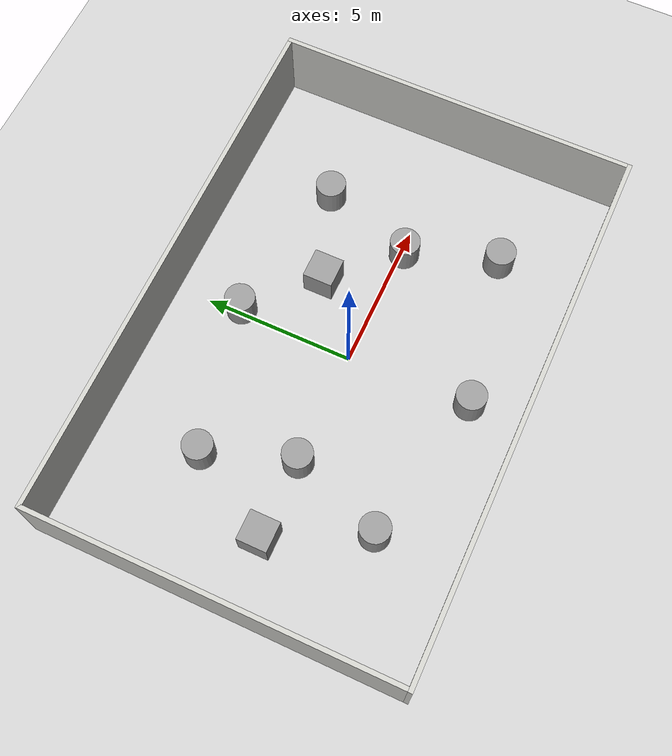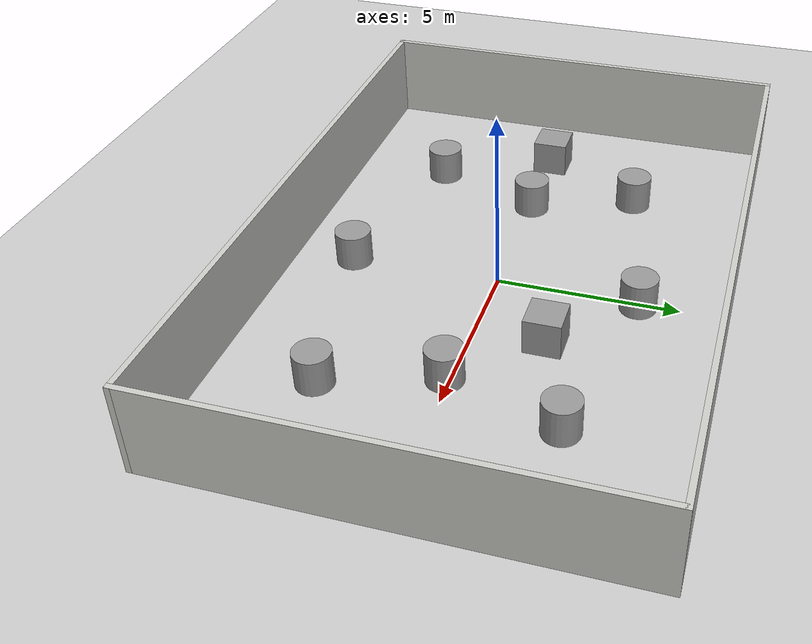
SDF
<sdf version="1.7">
 <world name="default">
  <light name="sun" type="directional">
   <pose>0 0 10 0 -0 0</pose>
   <diffuse>0.8 0.8 0.8 1</diffuse>
   <specular>0.2 0.2 0.2 1</specular>
   <attenuation>
    <range>1000</range>
    <constant>0.9</constant>
    <linear>0.01</linear>
    <quadratic>0.001</quadratic>
   </attenuation>
   <direction>-0.5 0.1 -0.9</direction>
   <spot><inner_angle>0</inner_angle><outer_angle>0</outer_angle><falloff>0</falloff></spot>
  </light>
  <model name="ground_plane">
   <static>1</static>
   <link name="link">
    <collision name="collision">
     <geometry><plane><normal>0 0 1</normal><size>100 100</size></plane></geometry>
     <surface><friction><ode><mu>100</mu><mu2>50</mu2></ode></friction></surface>
    </collision>
    <visual name="visual">
     <cast_shadows>0</cast_shadows>
     <geometry><plane><normal>0 0 1</normal><size>100 100</size></plane></geometry>
     <material>
      <script><uri>file://media/materials/scripts/gazebo.material</uri><name>Gazebo/Grey</name></script>
     </material>
    </visual>
   </link>
  </model>
  <gravity>0 0 -9.8</gravity>
  <magnetic_field>6e-06 2.3e-05 -4.2e-05</magnetic_field>
  <atmosphere type="adiabatic"/>
  <physics type="ode">
   <max_step_size>0.001</max_step_size>
   <real_time_factor>1</real_time_factor>
   <real_time_update_rate>1000</real_time_update_rate>
  </physics>
  <scene><ambient>0.4 0.4 0.4 1</ambient><background>0.7 0.7 0.7 1</background><shadows>1</shadows></scene>
  <spherical_coordinates>
   <surface_model>EARTH_WGS84</surface_model>
   <latitude_deg>0</latitude_deg>
   <longitude_deg>0</longitude_deg>
   <elevation>0</elevation>
   <heading_deg>0</heading_deg>
  </spherical_coordinates>
  <model name="my_world">
   <pose>-0.001285 0.176708 0 0 -0 0</pose>
   <link name="Wall_22">
    <collision name="Wall_22_Collision">
     <geometry><box><size>18 0.15 2.5</size></box></geometry>
     <pose>0 0 1.25 0 -0 0</pose>
    </collision>
    <visual name="Wall_22_Visual">
     <pose>0 0 1.25 0 -0 0</pose>
     <geometry><box><size>18 0.15 2.5</size></box></geometry>
     <material>
      <script><uri>file://media/materials/scripts/gazebo.material</uri><name>Gazebo/CeilingTiled</name></script>
      <ambient>1 1 1 1</ambient>
     </material>
     <meta><layer>0</layer></meta>
    </visual>
    <pose>0 6.05 0 0 -0 0</pose>
   </link>
   <link name="Wall_25">
    <collision name="Wall_25_Collision">
     <geometry><box><size>12.25 0.15 2.5</size></box></geometry>
     <pose>0 0 1.25 0 -0 0</pose>
    </collision>
    <visual name="Wall_25_Visual">
     <pose>0 0 1.25 0 -0 0</pose>
     <geometry><box><size>12.25 0.15 2.5</size></box></geometry>
     <material>
      <script><uri>file://media/materials/scripts/gazebo.material</uri><name>Gazebo/CeilingTiled</name></script>
      <ambient>1 1 1 1</ambient>
     </material>
     <meta><layer>0</layer></meta>
    </visual>
    <pose>8.925 -0 0 0 -0 -1.5708</pose>
   </link>
   <link name="Wall_26">
    <collision name="Wall_26_Collision">
     <geometry><box><size>18 0.15 2.5</size></box></geometry>
     <pose>0 0 1.25 0 -0 0</pose>
    </collision>
    <visual name="Wall_26_Visual">
     <pose>0 0 1.25 0 -0 0</pose>
     <geometry><box><size>18 0.15 2.5</size></box></geometry>
     <material>
      <script><uri>file://media/materials/scripts/gazebo.material</uri><name>Gazebo/CeilingTiled</name></script>
      <ambient>1 1 1 1</ambient>
     </material>
     <meta><layer>0</layer></meta>
    </visual>
    <pose>0 -6.05 0 0 -0 3.14159</pose>
   </link>
   <link name="Wall_27">
    <collision name="Wall_27_Collision">
     <geometry><box><size>12.25 0.15 2.5</size></box></geometry>
     <pose>0 0 1.25 0 -0 0</pose>
    </collision>
    <visual name="Wall_27_Visual">
     <pose>0 0 1.25 0 -0 0</pose>
     <geometry><box><size>12.25 0.15 2.5</size></box></geometry>
     <material>
      <script><uri>file://media/materials/scripts/gazebo.material</uri><name>Gazebo/CeilingTiled</name></script>
      <ambient>1 1 1 1</ambient>
     </material>
     <meta><layer>0</layer></meta>
    </visual>
    <pose>-8.925 -0 0 0 -0 1.5708</pose>
   </link>
   <static>1</static>
  </model>
  <model name="unit_cylinder">
   <pose>-4.82535 2.85925 0.499998 3e-06 -3e-06 0</pose>
   <link name="link">
    <inertial>
     <mass>1</mass>
     <inertia><ixx>0.145833</ixx><ixy>0</ixy><ixz>0</ixz><iyy>0.145833</iyy><iyz>0</iyz><izz>0.125</izz></inertia>
    </inertial>
    <collision name="collision">
     <geometry><cylinder><radius>0.5</radius><length>1</length></cylinder></geometry>
    </collision>
    <visual name="visual">
     <geometry><cylinder><radius>0.5</radius><length>1</length></cylinder></geometry>
     <material>
      <script><name>Gazebo/Grey</name><uri>file://media/materials/scripts/gazebo.material</uri></script>
     </material>
    </visual>
   </link>
  </model>
  <model name="unit_cylinder_clone">
   <pose>-4.93606 -3.09917 0.499998 3e-06 -3e-06 0</pose>
   <link name="link">
    <inertial>
     <mass>1</mass>
     <inertia><ixx>0.145833</ixx><ixy>0</ixy><ixz>0</ixz><iyy>0.145833</iyy><iyz>0</iyz><izz>0.125</izz></inertia>
    </inertial>
    <collision name="collision">
     <geometry><cylinder><radius>0.5</radius><length>1</length></cylinder></geometry>
    </collision>
    <visual name="visual">
     <geometry><cylinder><radius>0.5</radius><length>1</length></cylinder></geometry>
     <material>
      <script><name>Gazebo/Grey</name><uri>file://media/materials/scripts/gazebo.material</uri></script>
     </material>
    </visual>
   </link>
  </model>
  <model name="unit_cylinder_clone_0">
   <pose>5.18419 3.00656 0.499992 -3e-06 4e-06 0</pose>
   <link name="link">
    <inertial>
     <mass>1</mass>
     <inertia><ixx>0.145833</ixx><ixy>0</ixy><ixz>0</ixz><iyy>0.145833</iyy><iyz>0</iyz><izz>0.125</izz></inertia>
    </inertial>
    <collision name="collision">
     <geometry><cylinder><radius>0.5</radius><length>1</length></cylinder></geometry>
    </collision>
    <visual name="visual">
     <geometry><cylinder><radius>0.5</radius><length>1</length></cylinder></geometry>
     <material>
      <script><name>Gazebo/Grey</name><uri>file://media/materials/scripts/gazebo.material</uri></script>
     </material>
    </visual>
   </link>
  </model>
  <model name="unit_cylinder_clone_1">
   <pose>5.16146 -3.12245 0.499998 3e-06 -4e-06 0</pose>
   <link name="link">
    <inertial>
     <mass>1</mass>
     <inertia><ixx>0.145833</ixx><ixy>0</ixy><ixz>0</ixz><iyy>0.145833</iyy><iyz>0</iyz><izz>0.125</izz></inertia>
    </inertial>
    <collision name="collision">
     <geometry><cylinder><radius>0.5</radius><length>1</length></cylinder></geometry>
    </collision>
    <visual name="visual">
     <geometry><cylinder><radius>0.5</radius><length>1</length></cylinder></geometry>
     <material>
      <script><name>Gazebo/Grey</name><uri>file://media/materials/scripts/gazebo.material</uri></script>
     </material>
    </visual>
   </link>
  </model>
  <model name="unit_cylinder_clone_2">
   <pose>0.132042 3.89493 0.499992 -3e-06 4e-06 0</pose>
   <link name="link">
    <inertial>
     <mass>1</mass>
     <inertia><ixx>0.145833</ixx><ixy>0</ixy><ixz>0</ixz><iyy>0.145833</iyy><iyz>0</iyz><izz>0.125</izz></inertia>
    </inertial>
    <collision name="collision">
     <geometry><cylinder><radius>0.5</radius><length>1</length></cylinder></geometry>
    </collision>
    <visual name="visual">
     <geometry><cylinder><radius>0.5</radius><length>1</length></cylinder></geometry>
     <material>
      <script><name>Gazebo/Grey</name><uri>file://media/materials/scripts/gazebo.material</uri></script>
     </material>
    </visual>
   </link>
  </model>
  <model name="unit_cylinder_clone_3">
   <pose>0.113515 -4.12679 0.499998 3e-06 4e-06 -0</pose>
   <link name="link">
    <inertial>
     <mass>1</mass>
     <inertia><ixx>0.145833</ixx><ixy>0</ixy><ixz>0</ixz><iyy>0.145833</iyy><iyz>0</iyz><izz>0.125</izz></inertia>
    </inertial>
    <collision name="collision">
     <geometry><cylinder><radius>0.5</radius><length>1</length></cylinder></geometry>
    </collision>
    <visual name="visual">
     <geometry><cylinder><radius>0.5</radius><length>1</length></cylinder></geometry>
     <material>
      <script><name>Gazebo/Grey</name><uri>file://media/materials/scripts/gazebo.material</uri></script>
     </material>
    </visual>
   </link>
  </model>
  <model name="unit_cylinder_clone_4">
   <pose>-3.81557 -0.026393 0.499992 -3e-06 -4e-06 -0</pose>
   <link name="link">
    <inertial>
     <mass>1</mass>
     <inertia><ixx>0.145833</ixx><ixy>0</ixy><ixz>0</ixz><iyy>0.145833</iyy><iyz>0</iyz><izz>0.125</izz></inertia>
    </inertial>
    <collision name="collision">
     <geometry><cylinder><radius>0.5</radius><length>1</length></cylinder></geometry>
    </collision>
    <visual name="visual">
     <geometry><cylinder><radius>0.5</radius><length>1</length></cylinder></geometry>
     <material>
      <script><name>Gazebo/Grey</name><uri>file://media/materials/scripts/gazebo.material</uri></script>
     </material>
    </visual>
   </link>
  </model>
  <model name="unit_cylinder_clone_5">
   <pose>4.20247 -0.126171 0.499993 -3e-06 -3e-06 0</pose>
   <link name="link">
    <inertial>
     <mass>1</mass>
     <inertia><ixx>0.145833</ixx><ixy>0</ixy><ixz>0</ixz><iyy>0.145833</iyy><iyz>0</iyz><izz>0.125</izz></inertia>
    </inertial>
    <collision name="collision">
     <geometry><cylinder><radius>0.5</radius><length>1</length></cylinder></geometry>
    </collision>
    <visual name="visual">
     <geometry><cylinder><radius>0.5</radius><length>1</length></cylinder></geometry>
     <material>
      <script><name>Gazebo/Grey</name><uri>file://media/materials/scripts/gazebo.material</uri></script>
     </material>
    </visual>
   </link>
  </model>
  <model name="unit_box">
   <pose>2.21401 1.90511 0.499995 -1e-05 -0 0</pose>
   <link name="link">
    <inertial>
     <mass>1</mass>
     <inertia>
      <ixx>0.166667</ixx>
      <ixy>0</ixy>
      <ixz>0</ixz>
      <iyy>0.166667</iyy>
      <iyz>0</iyz>
      <izz>0.166667</izz>
     </inertia>
    </inertial>
    <collision name="collision"><geometry><box><size>1 1 1</size></box></geometry></collision>
    <visual name="visual">
     <geometry><box><size>1 1 1</size></box></geometry>
     <material>
      <script><name>Gazebo/Grey</name><uri>file://media/materials/scripts/gazebo.material</uri></script>
     </material>
    </visual>
   </link>
  </model>
  <model name="unit_box_clone">
   <pose>-6.44521 -0.007507 0.5 0 -0 0</pose>
   <link name="link">
    <inertial>
     <mass>1</mass>
     <inertia>
      <ixx>0.166667</ixx>
      <ixy>0</ixy>
      <ixz>0</ixz>
      <iyy>0.166667</iyy>
      <iyz>0</iyz>
      <izz>0.166667</izz>
     </inertia>
    </inertial>
    <collision name="collision"><geometry><box><size>1 1 1</size></box></geometry></collision>
    <visual name="visual">
     <geometry><box><size>1 1 1</size></box></geometry>
     <material>
      <script><name>Gazebo/Grey</name><uri>file://media/materials/scripts/gazebo.material</uri></script>
     </material>
    </visual>
   </link>
  </model>
 </world>
</sdf>
